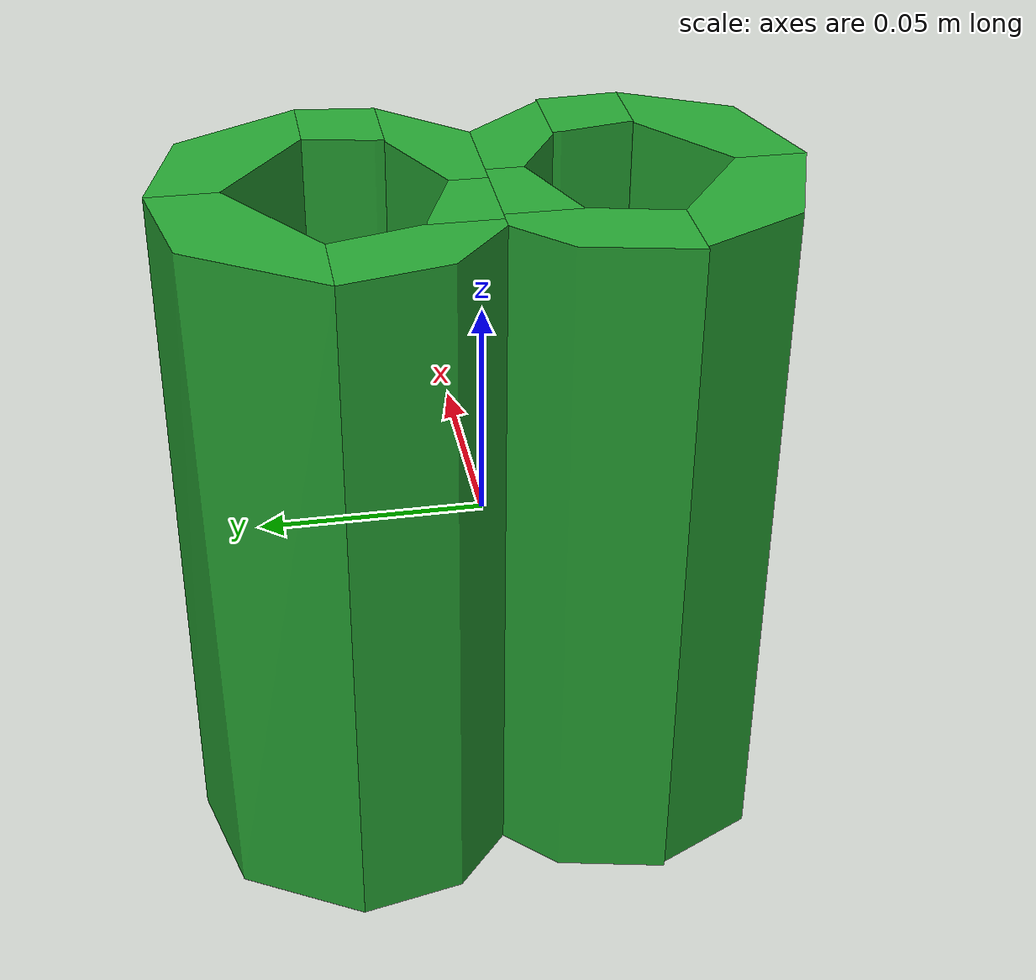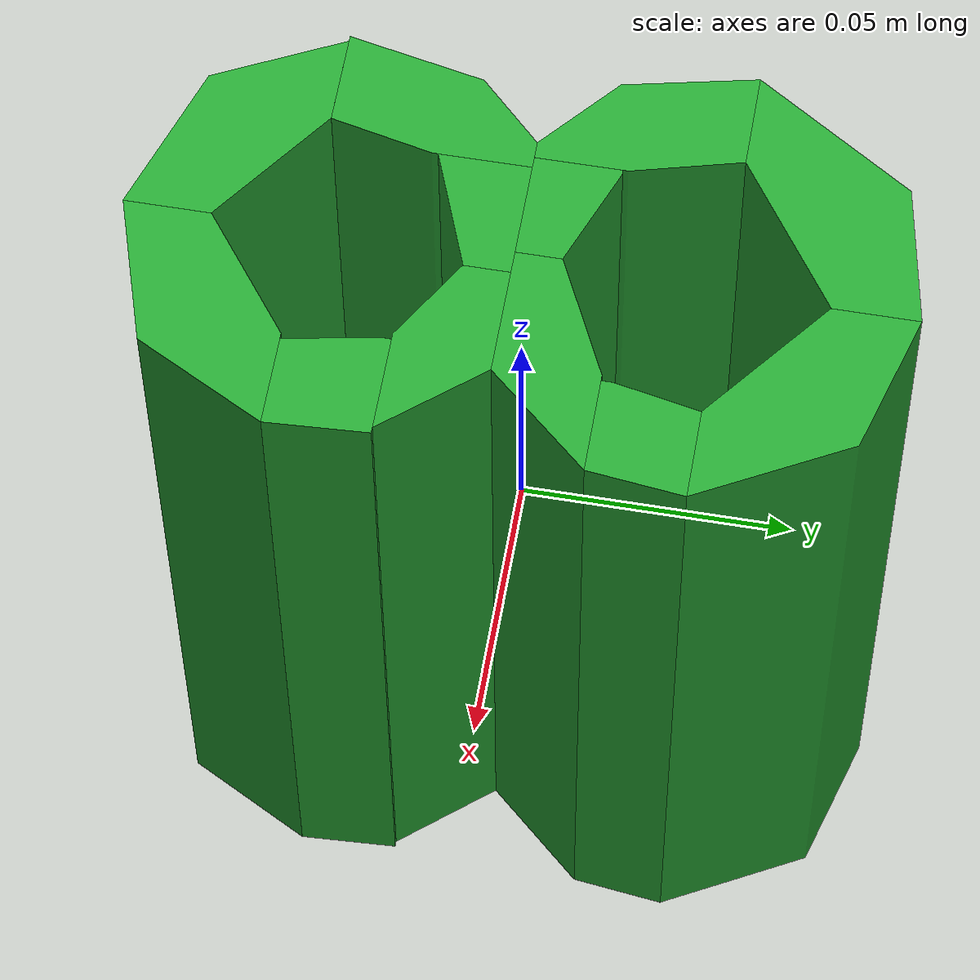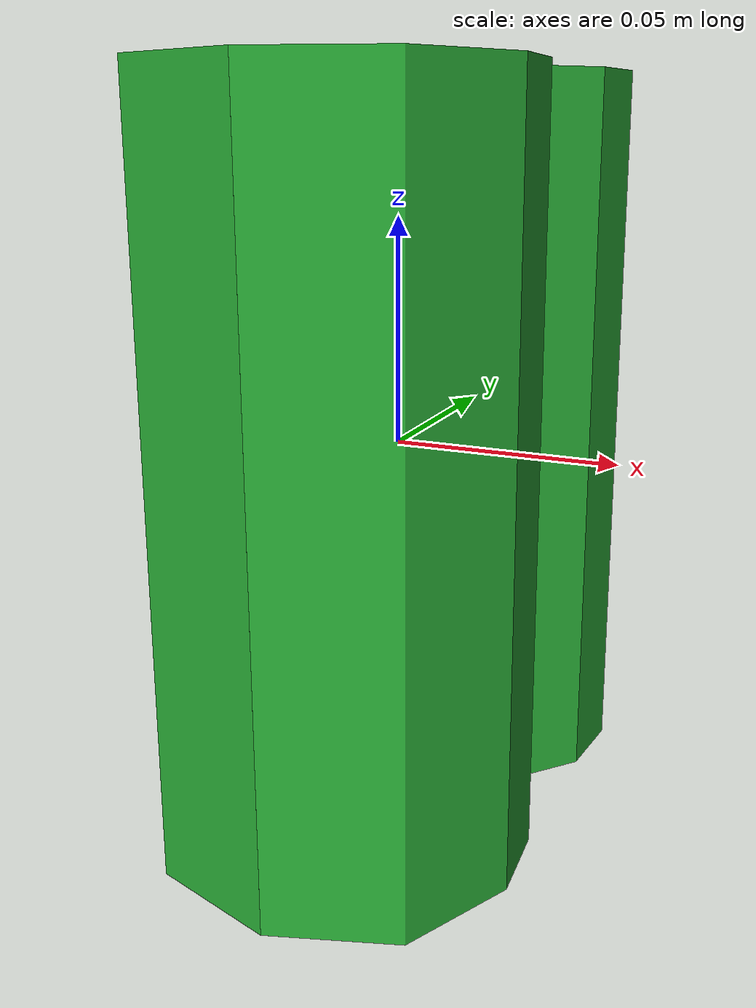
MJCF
<?xml version="1.0" ?>
<mujoco model="peg8">
    <asset>
        <mesh file="peg/0.stl" name="mesh_0"/>
        <mesh file="peg/1.stl" name="mesh_1"/>
        <mesh file="peg/2.stl" name="mesh_2"/>
        <mesh file="peg/3.stl" name="mesh_3"/>
        <mesh file="peg/4.stl" name="mesh_4"/>
        <mesh file="peg/5.stl" name="mesh_5"/>
        <mesh file="peg/6.stl" name="mesh_6"/>
        <mesh file="peg/7.stl" name="mesh_7"/>
        <mesh file="peg/8.stl" name="mesh_8"/>
        <mesh file="peg/9.stl" name="mesh_9"/>
        <mesh file="peg/10.stl" name="mesh_10"/>
        <mesh file="peg/11.stl" name="mesh_11"/>
        <texture file="../texture/green-wood.png" name="green-wood"/>
        <material name="greenwood_mat" texture="green-wood" texrepeat="1 1" specular="0.4" shininess="0.1"/>
    </asset>
    <worldbody>
        <body>
            <body name="object">
                <geom mesh="mesh_0" type="mesh" group="0" material="greenwood_mat"/>
                <geom mesh="mesh_1" type="mesh" group="0" material="greenwood_mat"/>
                <geom mesh="mesh_2" type="mesh" group="0" material="greenwood_mat"/>
                <geom mesh="mesh_3" type="mesh" group="0" material="greenwood_mat"/>
                <geom mesh="mesh_4" type="mesh" group="0" material="greenwood_mat"/>
                <geom mesh="mesh_5" type="mesh" group="0" material="greenwood_mat"/>
                <geom mesh="mesh_6" type="mesh" group="0" material="greenwood_mat"/>
                <geom mesh="mesh_7" type="mesh" group="0" material="greenwood_mat"/>
                <geom mesh="mesh_8" type="mesh" group="0" material="greenwood_mat"/>
                <geom mesh="mesh_9" type="mesh" group="0" material="greenwood_mat"/>
                <geom mesh="mesh_10" type="mesh" group="0" material="greenwood_mat"/>
                <geom mesh="mesh_11" type="mesh" group="0" material="greenwood_mat"/>
            </body>
        </body>
    </worldbody>
</mujoco>
